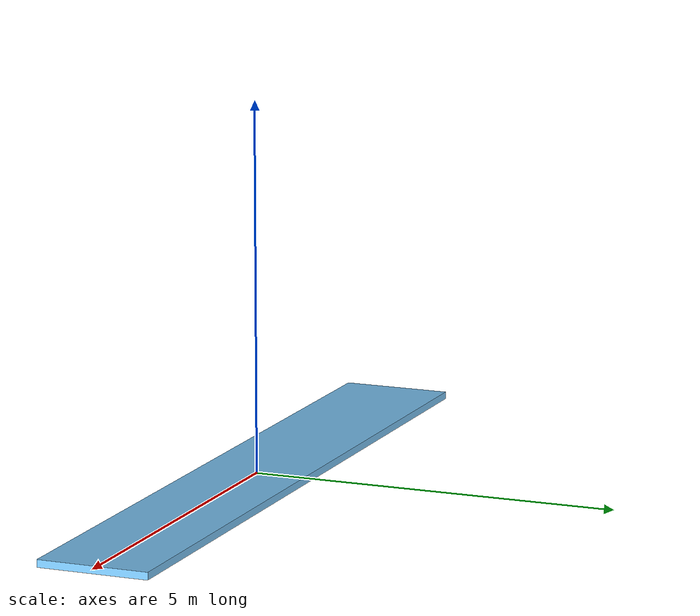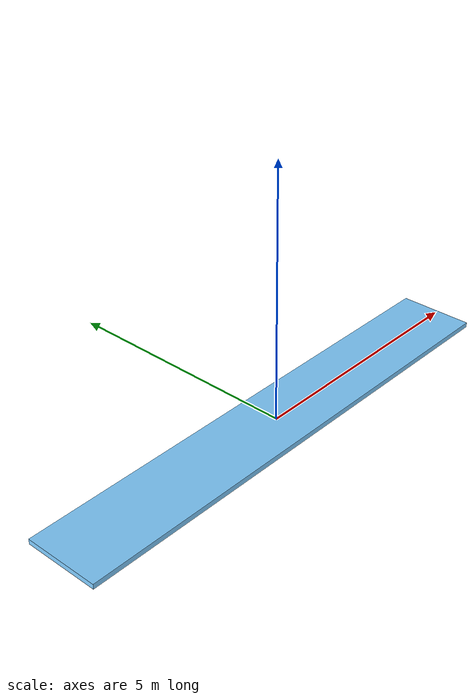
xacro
<?xml version="1.0"?>
<robot name="low_friction_plane">
  <link name="plane_link">
    <contact>
      <!-- Coeficiente de atrito reduzido para 0.1, conforme tese -->
      <lateral_friction value="0.1"/>
      <rolling_friction value="0.0"/>
      <spinning_friction value="0.0"/>
    </contact>
    <inertial>
      <origin xyz="0 0 0"/>
      <mass value="10000"/>
      <inertia ixx="1000" ixy="0" ixz="0" iyy="1000" iyz="0" izz="1000"/>
    </inertial>
    <visual>
      <origin xyz="0 0 0"/>
      <geometry>
        <box size="10.0 1.5 0.1"/>
      </geometry>
      <material name="blue_ice">
        <color rgba="0.5 0.8 1.0 1"/> <!-- Cor para indicar piso escorregadio -->
      </material>
    </visual>
    <collision>
      <origin xyz="0 0 0"/>
      <geometry>
        <box size="10.0 1.5 0.1"/>
      </geometry>
    </collision>
  </link>
</robot>
